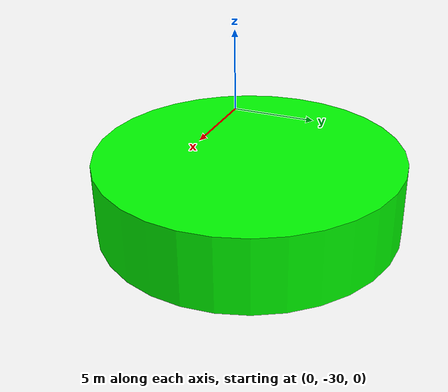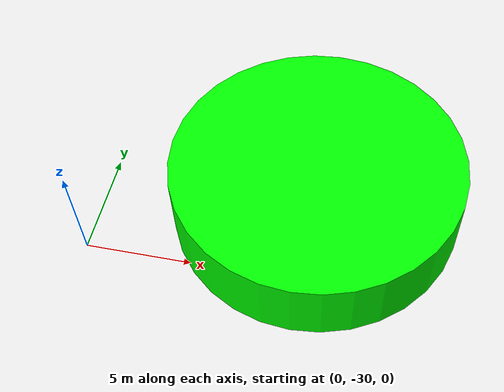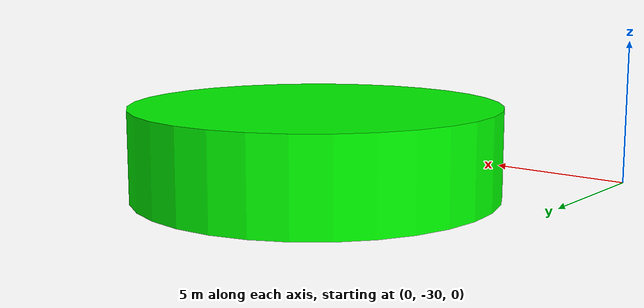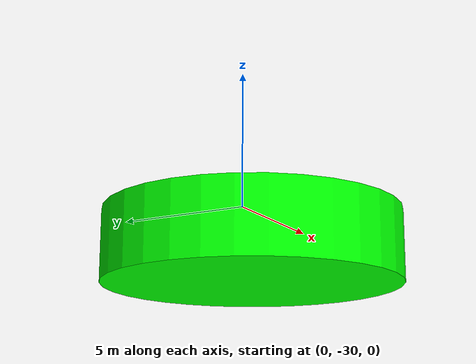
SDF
<?xml version="1.0"?>
<sdf version="1.6">
  <model name="yesil">
    <static>true</static>
    <link name="link">
      <visual name="visual">
        <geometry><mesh><scale>0.25 0.25 0.25</scale>
            <uri>model://yesil/meshes/yesil.dae</uri></mesh></geometry>
        <material><ambient>0 1 0 1</ambient><diffuse>0 1 0 1</diffuse></material>
      </visual>
      <collision name="collision">
        <geometry><mesh><scale>0.25 0.25 0.25</scale>
            <uri>model://yesil/meshes/yesil.dae</uri></mesh></geometry>
      </collision>
    </link>
  </model>
</sdf>
